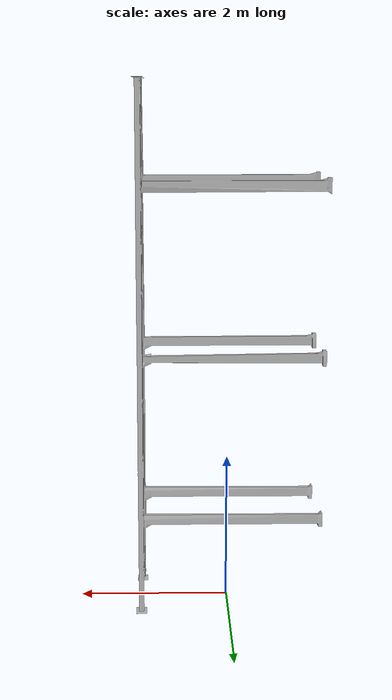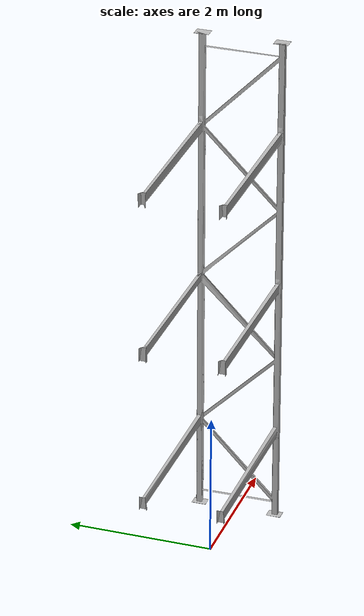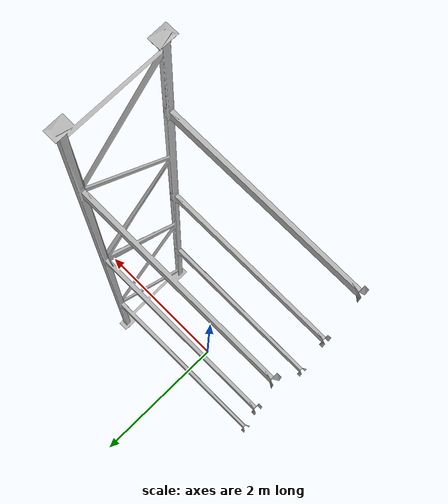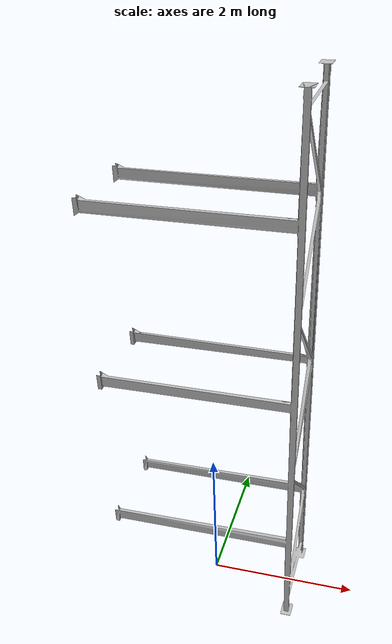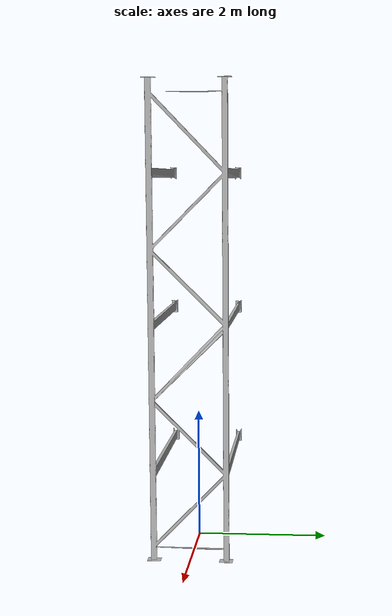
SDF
<?xml version='1.0'?>
<sdf version='1.6'>
  <model name='Shelf_Unit'>
    <link name='shelf_unit'>
      <pose frame=''>0 0 3.504 0 -0 0</pose>
      <inertial>
        <mass>100</mass>
        <inertia>
          <ixx>418.416</ixx>
          <ixy>0</ixy>
          <ixz>0</ixz>
          <iyy>460.293</iyy>
          <iyz>0</iyz>
          <izz>60.1749</izz>
        </inertia>
      </inertial>
      <gravity>1</gravity>
      <self_collide>0</self_collide>
      <kinematic>0</kinematic>
      <enable_wind>0</enable_wind>
      <visual name='visual'>
        <pose frame=''>0 0 0 0 -0 0</pose>
        <geometry>
          <mesh>
            <uri>model://Shelf_Unit/meshes/Shelf Unit Ultra Simplified.dae</uri>
          </mesh>
        </geometry>
        <transparency>0</transparency>
        <cast_shadows>0</cast_shadows>
      </visual>
      <collision name='collision'>
        <laser_retro>0</laser_retro>
        <pose frame=''>0 0 0 0 0 0</pose>
        <geometry>
          <mesh>
            <uri>model://Shelf_Unit/meshes/Shelf Unit Ultra Simplified.stl</uri>
          </mesh>
        </geometry>
      </collision>
    </link>
    <static>1</static>
  </model>
</sdf>
